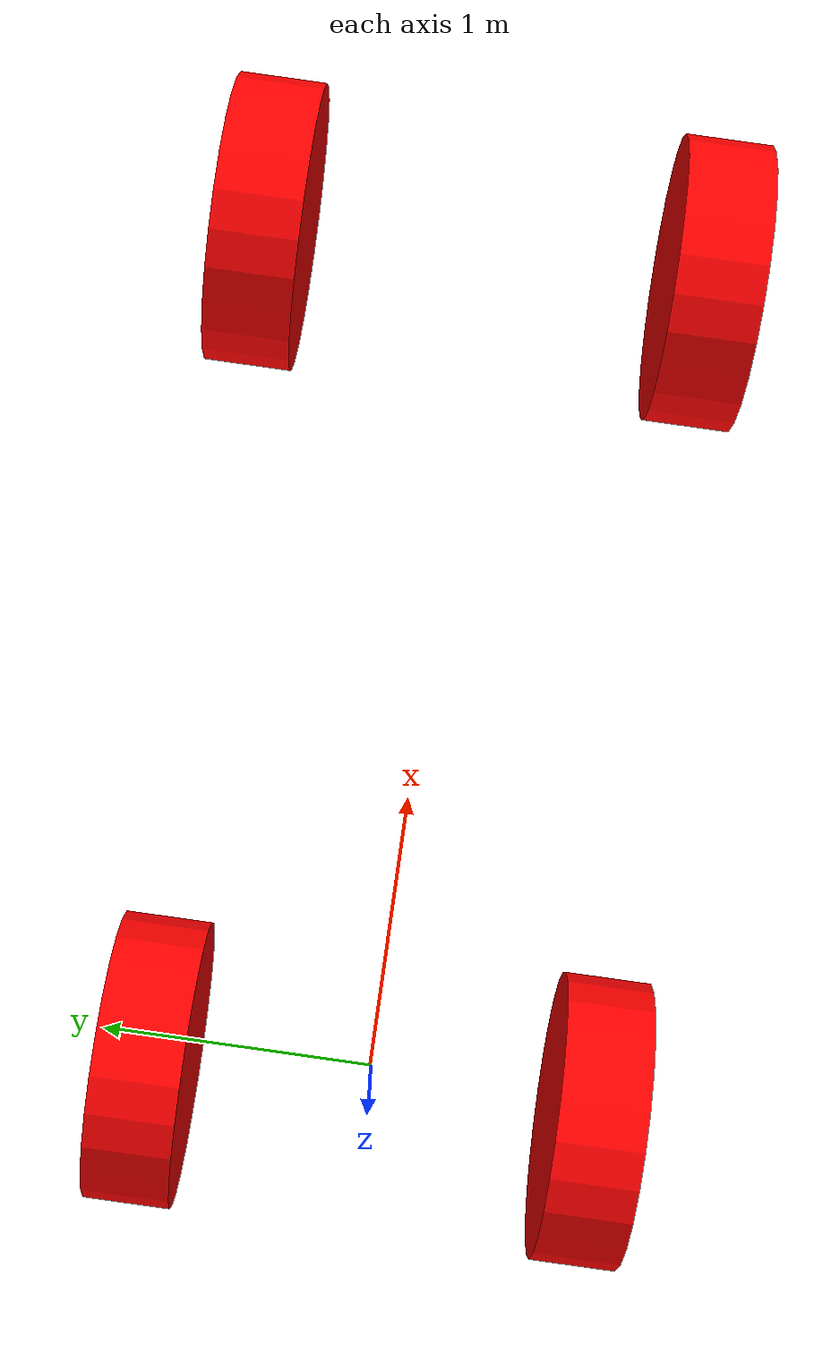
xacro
<robot name="test_robot" xmlns:xacro="http://ros.org/wiki/xacro">
  <xacro:include filename="$(find vehicle_model)/xacro/wheel.xacro" />
  <xacro:arg name="wheel_radius" default="0.5"/>
  <xacro:arg name="wheel_base" default="2.950"/>
  <xacro:arg name="wheel_tread" default="1.55"/>

  <xacro:property name="pi" value="3.141592" />

  <link name="base_link"/>
  <joint name="base_joint" type="fixed">
    <parent link="base_link"/>
    <origin rpy="0 0 0" xyz="0 0 $(arg wheel_radius)"/>
    <child  link="wheel_base_link"/>
  </joint>
  <link name="wheel_base_link"/>

  <xacro:box_macro suffix="wheel_right_rear" parent="wheel_base_link" x="0" y="${-1*$(arg wheel_tread)/2}" yaw="${-1*pi/2}" radius="$(arg wheel_radius)"/>
  <xacro:box_macro suffix="wheel_left_rear" parent="wheel_base_link" x="0" y="${$(arg wheel_tread)/2}" yaw="${pi/2}" radius="$(arg wheel_radius)"/>
  <xacro:box_macro suffix="wheel_right_front" parent="wheel_base_link" x="$(arg wheel_base)" y="${-1*$(arg wheel_tread)/2}" yaw="${-1*pi/2}" radius="$(arg wheel_radius)"/>
  <xacro:box_macro suffix="wheel_left_front" parent="wheel_base_link" x="$(arg wheel_base)" y="${$(arg wheel_tread)/2}" yaw="${pi/2}" radius="$(arg wheel_radius)"/>
</robot>

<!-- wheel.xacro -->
<robot xmlns:xacro="http://ros.org/wiki/xacro">
  <material name="red">
    <color rgba="1.0 0.0 0.0 2.0"/>
  </material>

  <xacro:property name="pi" value="3.141592" />

  <xacro:macro name="box_macro" params="suffix parent x y yaw radius">
    <joint name="${suffix}_joint" type="fixed">
      <origin rpy="0 0 ${yaw}" xyz="${x} ${y} 0"/>
      <parent link="${parent}"/>
      <child  link="${suffix}_link"/>
    </joint>

    <link name="${suffix}_link">
      <visual>
        <geometry>
          <cylinder radius="${radius}" length="0.3" />
        </geometry>
        <origin xyz="0 0 0" rpy="0 ${pi/2} 0"/>
        <material name="red"/>
      </visual>
    </link>
  </xacro:macro>
</robot>
